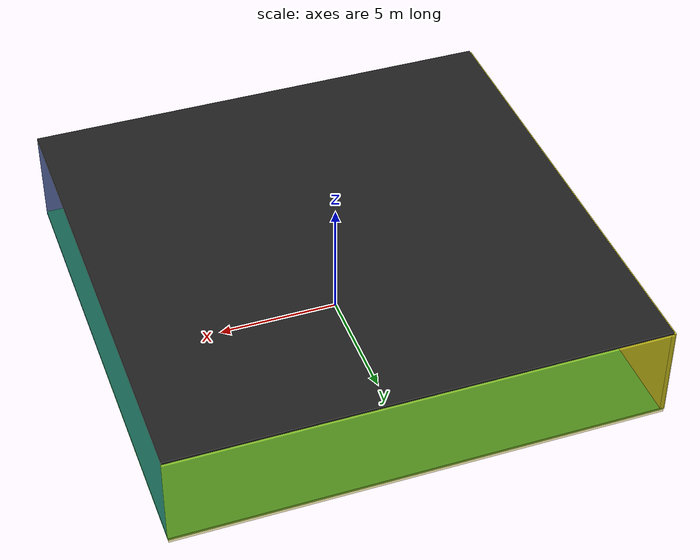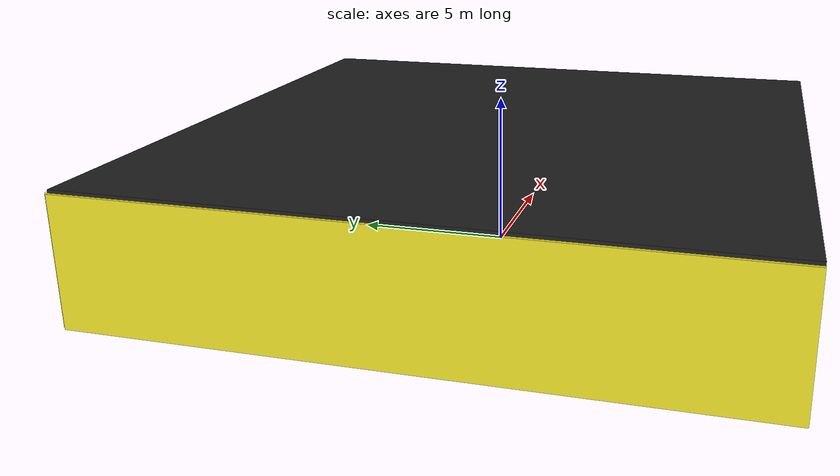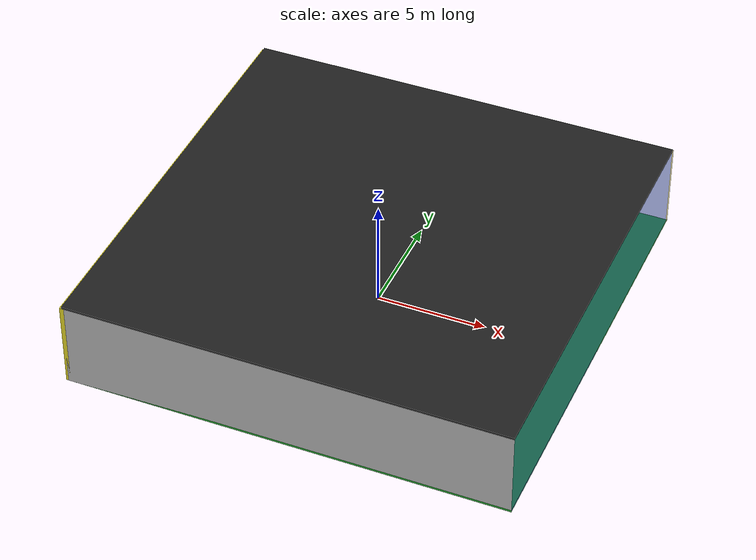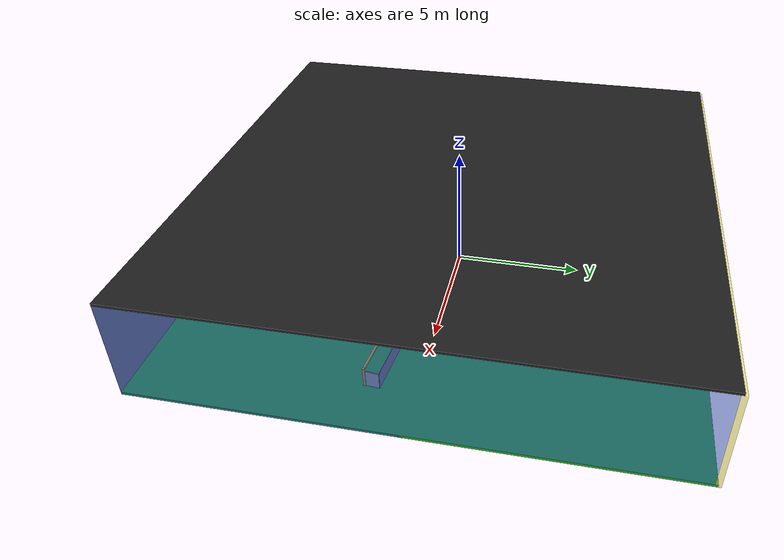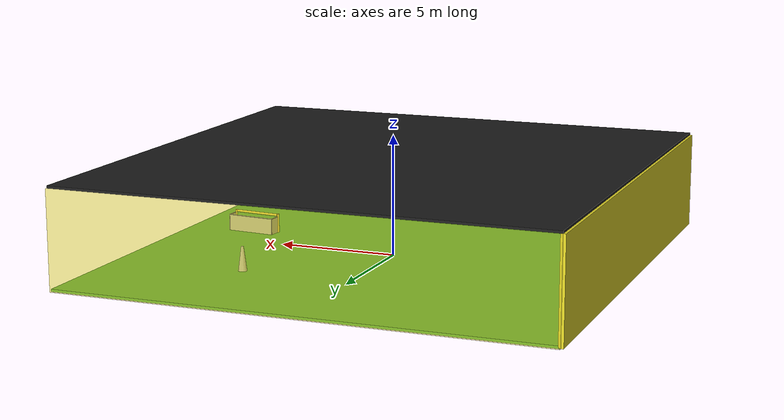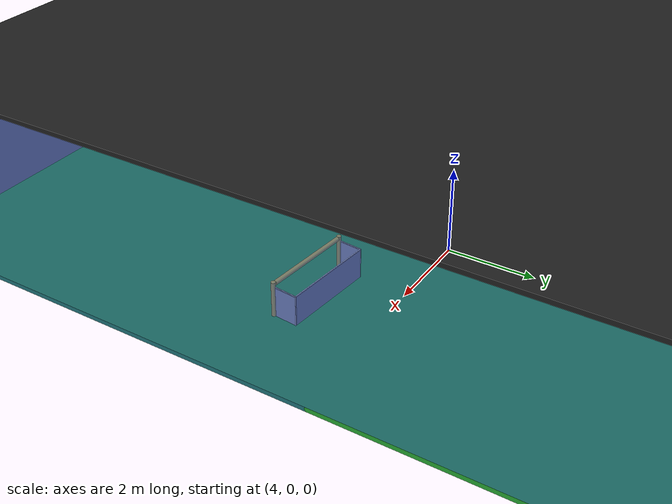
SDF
<sdf version="1.4">
 <world name="default">
  <physics type="ode">
   <max_step_size>0.001</max_step_size>
   <real_time_factor>1</real_time_factor>
   <real_time_update_rate>1000</real_time_update_rate>
   <gravity>0 0 -9.8</gravity>
  </physics>
  <scene><ambient>0.4 0.4 0.4 1</ambient><background>0.7 0.7 0.7 1</background><shadows>1</shadows></scene>
  <model name="Surrounding">
   <static>1</static>
   <link name="Ceiling">
    <collision name="Ceiling_Collision"><geometry><box><size>20 20 0.1</size></box></geometry></collision>
    <visual name="Ceiling_Visual">
     <geometry><box><size>20 20 0.1</size></box></geometry>
     <material>
      <script><uri>file://media/materials/scripts/gazebo.material</uri><name>Gazebo/Black</name></script>
     </material>
    </visual>
    <pose>0 0 4.05 0 0 0</pose>
   </link>
   <link name="Wall_South">
    <collision name="Wall_South_Collision">
     <geometry><box><size>20 0 4</size></box></geometry>
     <pose>0 0 2 0 -0 0</pose>
    </collision>
    <visual name="Wall_South_Visual">
     <pose>0 0 2 0 -0 0</pose>
     <geometry><box><size>20 0 4</size></box></geometry>
     <material>
      <script><uri>file://media/materials/scripts/gazebo.material</uri><name>Gazebo/JointAnchor</name></script>
     </material>
    </visual>
    <velocity_decay><linear>0</linear><angular>0</angular></velocity_decay>
    <pose>0 -10 0 0 -0 0</pose>
   </link>
   <link name="Wall_East">
    <collision name="Wall_21_Collision">
     <geometry><box><size>20 0 4</size></box></geometry>
     <pose>0 0 2 0 -0 0</pose>
    </collision>
    <visual name="Wall_21_Visual">
     <pose>0 0 2 0 -0 0</pose>
     <geometry><box><size>20 0 4</size></box></geometry>
     <material>
      <script><uri>file://media/materials/scripts/gazebo.material</uri><name>Gazebo/BlueTransparent</name></script>
     </material>
    </visual>
    <velocity_decay><linear>0</linear><angular>0</angular></velocity_decay>
    <pose>10 0 0 0 -0 1.5708</pose>
   </link>
   <link name="Wall_North">
    <collision name="Wall_22_Collision">
     <geometry><box><size>20 0.2 4</size></box></geometry>
     <pose>0 0 2 0 -0 0</pose>
    </collision>
    <visual name="Wall_22_Visual">
     <pose>0 0 2 0 -0 0</pose>
     <geometry><box><size>20 0.2 4</size></box></geometry>
     <material>
      <script>
       <uri>file://media/materials/scripts/gazebo.material</uri>
       <name>Gazebo/YellowTransparent</name>
      </script>
     </material>
    </visual>
    <velocity_decay><linear>0</linear><angular>0</angular></velocity_decay>
    <pose>0 10 0 0 -0 0</pose>
   </link>
   <link name="Wall_West">
    <collision name="Wall_23_Collision">
     <geometry><box><size>20 0.2 4</size></box></geometry>
     <pose>0 0 2 0 -0 0</pose>
    </collision>
    <visual name="Wall_23_Visual">
     <pose>0 0 2 0 -0 0</pose>
     <geometry><box><size>20 0.2 4</size></box></geometry>
     <material>
      <script><uri>file://media/materials/scripts/gazebo.material</uri><name>Gazebo/YellowGlow</name></script>
     </material>
    </visual>
    <velocity_decay><linear>0</linear><angular>0</angular></velocity_decay>
    <pose>-10 0 0 0 0 -1.5708</pose>
   </link>
   <link name="Ground_link">
    <collision name="collision">
     <pose>0 0 .05 0 -0 0</pose>
     <geometry><box><size>20 20 0.1</size></box></geometry>
    </collision>
    <visual name="visual">
     <pose>0 0 .05 0 -0 0</pose>
     <geometry><box><size>20 20 0.1</size></box></geometry>
     <material>
      <script><uri>file://media/materials/scripts/gazebo.material</uri><name>Gazebo/GreenGlow</name></script>
     </material>
    </visual>
   </link>
   <static>1</static>
  </model>
  <spherical_coordinates>
   <surface_model>EARTH_WGS84</surface_model>
   <latitude_deg>0</latitude_deg>
   <longitude_deg>0</longitude_deg>
   <elevation>0</elevation>
   <heading_deg>0</heading_deg>
  </spherical_coordinates>
  <light name="lightball_0" type="diffuse">
   <diffuse>0.8 0.8 0.8 1</diffuse>
   <specular>0.2 0.2 0.2 1</specular>
   <attenuation>
    <range>100</range>
    <constant>0.7</constant>
    <linear>0.01</linear>
    <quadratic>0.001</quadratic>
   </attenuation>
   <direction>-0.5 0.1 -0.9</direction>
   <pose>-8.50731132923 -9.66249899215 3.18854163534 0 0 0</pose>
  </light>
  <light name="lightball_1" type="diffuse">
   <diffuse>0.8 0.8 0.8 1</diffuse>
   <specular>0.2 0.2 0.2 1</specular>
   <attenuation>
    <range>100</range>
    <constant>0.7</constant>
    <linear>0.01</linear>
    <quadratic>0.001</quadratic>
   </attenuation>
   <direction>-0.5 0.1 -0.9</direction>
   <pose>1.45346762812 -3.85129579979 3.71665255653 0 0 0</pose>
  </light>
  <light name="lightball_2" type="diffuse">
   <diffuse>0.8 0.8 0.8 1</diffuse>
   <specular>0.2 0.2 0.2 1</specular>
   <attenuation>
    <range>100</range>
    <constant>0.7</constant>
    <linear>0.01</linear>
    <quadratic>0.001</quadratic>
   </attenuation>
   <direction>-0.5 0.1 -0.9</direction>
   <pose>5.78233758633 -5.68437080012 1.81413884412 0 0 0</pose>
  </light>
  <light name="lightball_3" type="diffuse">
   <diffuse>0.8 0.8 0.8 1</diffuse>
   <specular>0.2 0.2 0.2 1</specular>
   <attenuation>
    <range>100</range>
    <constant>0.7</constant>
    <linear>0.01</linear>
    <quadratic>0.001</quadratic>
   </attenuation>
   <direction>-0.5 0.1 -0.9</direction>
   <pose>-7.5331627767 -1.51576610328 3.69166706735 0 0 0</pose>
  </light>
  <include><uri>model://cabinet</uri><pose>2.23695181359 -6.92865023496 0 0 0 1.35611240042</pose></include>
  <include>
   <uri>model://construction_cone</uri>
   <pose>4.46916975911 4.87391308282 0 0 0 1.17570626983</pose>
  </include>
  <include>
   <uri>model://robocup_3Dsim_goal</uri>
   <pose>7.0194492058 -1.70837851394 0 0 0 1.47202548318</pose>
  </include>
 </world>
</sdf>

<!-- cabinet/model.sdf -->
<sdf version="1.5">
  <model name="cabinet">
    <static>true</static>
    <link name="cabinet_bottom_plate">
      <inertial>
        <pose>0 0 -1 0 0 0</pose>
        <inertia>
          <ixx>2.050000</ixx>
          <ixy>0</ixy>
          <ixz>0</ixz>
          <iyy>2.050000</iyy>
          <iyz>0</iyz>
          <izz>2.050000</izz>
        </inertia>
        <mass>25.000000</mass>
      </inertial>
      <collision name="cabinet_bottom_plate_geom">
        <pose>0 0 0.010000 0 0 0</pose>
        <geometry>
          <box>
            <size>0.450000 0.450000 0.020000</size>
          </box>
        </geometry>
      </collision>
      <visual name="cabinet_bottom_plate_geom_visual">
        <pose>0 0 0.010000 0 0 0</pose>
        <geometry>
          <box>
            <size>0.450000 0.450000 0.020000</size>
          </box>
        </geometry>
        <material>
          <script>
            <uri>model://media/materials/scripts/gazebo.material</uri>
            <name>Gazebo/Wood</name>
          </script>
        </material>
      </visual>
      <collision name="cabinet_bottom_plate_geom_cabinet_back_plate">
        <pose>0.235000 0 0.510000 0 0 0</pose>
        <geometry>
          <box>
            <size>0.020000 0.450000 1.020000</size>
          </box>
        </geometry>
      </collision>
      <visual name="cabinet_bottom_plate_geom_cabinet_back_plate_visual">
        <pose>0.235000 0 0.510000 0 0 0</pose>
        <geometry>
          <box>
            <size>0.020000 0.450000 1.020000</size>
          </box>
        </geometry>
        <material>
          <script>
            <uri>model://media/materials/scripts/gazebo.material</uri>
            <name>Gazebo/Wood</name>
          </script>
        </material>
      </visual>
      <collision name="cabinet_bottom_plate_geom_cabinet_left_plate">
        <pose>0 0.235000 0.510000 0 0 0</pose>
        <geometry>
          <box>
            <size>0.450000 0.020000 1.020000</size>
          </box>
        </geometry>
      </collision>
      <visual name="cabinet_bottom_plate_geom_cabinet_left_plate_visual">
        <pose>0 0.235000 0.510000 0 0 0</pose>
        <geometry>
          <box>
            <size>0.450000 0.020000 1.020000</size>
          </box>
        </geometry>
        <material>
          <script>
            <uri>model://media/materials/scripts/gazebo.material</uri>
            <name>Gazebo/Wood</name>
          </script>
        </material>
      </visual>
      <collision name="cabinet_bottom_plate_geom_cabinet_middle_plate">
        <pose>0 0 0.510000 0 0 0</pose>
        <geometry>
          <box>
            <size>0.450000 0.450000 0.020000</size>
          </box>
        </geometry>
      </collision>
      <visual name="cabinet_bottom_plate_geom_cabinet_middle_plate_visual">
        <pose>0 0 0.510000 0 0 0</pose>
        <geometry>
          <box>
            <size>0.450000 0.450000 0.020000</size>
          </box>
        </geometry>
        <material>
          <script>
            <uri>model://media/materials/scripts/gazebo.material</uri>
            <name>Gazebo/Wood</name>
          </script>
        </material>
      </visual>
      <collision name="cabinet_bottom_plate_geom_cabinet_right_plate">
        <pose>0 -0.235000 0.510000 0 0 0</pose>
        <geometry>
          <box>
            <size>0.450000 0.020000 1.020000</size>
          </box>
        </geometry>
      </collision>
      <visual name="cabinet_bottom_plate_geom_cabinet_right_plate_visual">
        <pose>0 -0.235000 0.510000 0 0 0</pose>
        <geometry>
          <box>
            <size>0.450000 0.020000 1.020000</size>
          </box>
        </geometry>
        <material>
          <script>
            <uri>model://media/materials/scripts/gazebo.material</uri>
            <name>Gazebo/Wood</name>
          </script>
        </material>
      </visual>
      <collision name="cabinet_bottom_plate_geom_cabinet_top_plate">
        <pose>0 0 1.010000 0 0 0</pose>
        <geometry>
          <box>
            <size>0.450000 0.450000 0.020000</size>
          </box>
        </geometry>
      </collision>
      <visual name="cabinet_bottom_plate_geom_cabinet_top_plate_visual">
        <pose>0 0 1.010000 0 0 0</pose>
        <geometry>
          <box>
            <size>0.450000 0.450000 0.020000</size>
          </box>
        </geometry>
        <material>
          <script>
            <uri>model://media/materials/scripts/gazebo.material</uri>
            <name>Gazebo/Wood</name>
          </script>
        </material>
      </visual>
    </link>
  </model>
</sdf>

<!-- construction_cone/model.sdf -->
<sdf version="1.5">
  <model name="Construction Cone">
    <link name="link">
      <collision name="collision">
        <geometry>
          <mesh>
            <scale>10 10 10</scale>
            <uri>file://isr-testbed/construction_cone/meshes/construction_cone.dae</uri>
          </mesh>
        </geometry>
      </collision>
      <visual name="visual">
        <geometry>
          <mesh>
            <scale>10 10 10</scale>
            <uri>file://isr-testbed/construction_cone/meshes/construction_cone.dae</uri>
          </mesh>
        </geometry>
      </visual>
    </link>
  </model>
</sdf>

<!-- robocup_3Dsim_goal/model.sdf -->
<sdf version="1.5">
  <model name="robocup_3d_goal">
    <static>true</static>
    <link name="left_post">
      <pose>0 1.05 0.45 0 0 0</pose>
      <collision name="collision">
        <geometry>
          <cylinder>
            <radius>0.05</radius>
            <length>0.9</length>
          </cylinder>
        </geometry>
      </collision>
      <visual name="visual">
        <geometry>
          <cylinder>
            <radius>0.05</radius>
            <length>0.9</length>
          </cylinder>
        </geometry>
        <material>
          <script>
            <uri>file://media/materials/scripts/gazebo.material</uri>
            <name>Gazebo/ZincYellow</name>
          </script>
        </material>
      </visual>
    </link>
    <link name="left_support_horiz_lower">
      <pose>0.30 1.05 0.01 0 0 0</pose>
      <collision name="collision">
        <geometry>
          <box>
            <size>0.50 0.02 0.02</size>
          </box>
        </geometry>
      </collision>
      <visual name="visual">
        <geometry>
          <box>
            <size>0.50 0.02 0.02</size>
          </box>
        </geometry>
        <material>
          <script>
            <uri>file://media/materials/scripts/gazebo.material</uri>
            <name>Gazebo/White</name>
          </script>
        </material>
      </visual>
    </link>
    <link name="left_support_horiz_upper">
      <pose>0.30 1.05 0.79 0 0 0</pose>
      <collision name="collision">
        <geometry>
          <box>
            <size>0.50 0.02 0.02</size>
          </box>
        </geometry>
      </collision>
      <visual name="visual">
        <geometry>
          <box>
            <size>0.50 0.02 0.02</size>
          </box>
        </geometry>
        <material>
          <script>
            <uri>file://media/materials/scripts/gazebo.material</uri>
            <name>Gazebo/White</name>
          </script>
        </material>
      </visual>
    </link>
    <link name="left_support_vertical">
      <pose>0.56 1.05 0.4 0 1.5708 0</pose>
      <collision name="collision">
        <geometry>
          <box>
            <size>0.80 0.02 0.02</size>
          </box>
        </geometry>
      </collision>
      <visual name="visual">
        <geometry>
          <box>
            <size>0.80 0.02 0.02</size>
          </box>
        </geometry>
        <material>
          <script>
            <uri>file://media/materials/scripts/gazebo.material</uri>
            <name>Gazebo/White</name>
          </script>
        </material>
      </visual>
    </link>
    <link name="right_support_horiz_lower">
      <pose>0.30 -1.05 0.01 0 0 0</pose>
      <collision name="collision">
        <geometry>
          <box>
            <size>0.50 0.02 0.02</size>
          </box>
        </geometry>
      </collision>
      <visual name="visual">
        <geometry>
          <box>
            <size>0.50 0.02 0.02</size>
          </box>
        </geometry>
        <material>
          <script>
            <uri>file://media/materials/scripts/gazebo.material</uri>
            <name>Gazebo/White</name>
          </script>
        </material>
      </visual>
    </link>
    <link name="right_support_horiz_upper">
      <pose>0.30 -1.05 0.79 0 0 0</pose>
      <collision name="collision">
        <geometry>
          <box>
            <size>0.50 0.02 0.02</size>
          </box>
        </geometry>
      </collision>
      <visual name="visual">
        <geometry>
          <box>
            <size>0.50 0.02 0.02</size>
          </box>
        </geometry>
        <material>
          <script>
            <uri>file://media/materials/scripts/gazebo.material</uri>
            <name>Gazebo/White</name>
          </script>
        </material>
      </visual>
    </link>
    <link name="right_support_vertical">
      <pose>0.56 -1.05 0.4 0 1.5708 0</pose>
      <collision name="collision">
        <geometry>
          <box>
            <size>0.80 0.02 0.02</size>
          </box>
        </geometry>
      </collision>
      <visual name="visual">
        <geometry>
          <box>
            <size>0.80 0.02 0.02</size>
          </box>
        </geometry>
        <material>
          <script>
            <uri>file://media/materials/scripts/gazebo.material</uri>
            <name>Gazebo/White</name>
          </script>
        </material>
      </visual>
    </link>
    <link name="center_support_horiz_lower">
      <pose>0.56 0 0.01 0 1.5708 0</pose>
      <collision name="collision">
        <geometry>
          <box>
            <size>0.02 2.08 0.02</size>
          </box>
        </geometry>
      </collision>
      <visual name="visual">
        <geometry>
          <box>
            <size>0.02 2.08 0.02</size>
          </box>
        </geometry>
        <material>
          <script>
            <uri>file://media/materials/scripts/gazebo.material</uri>
            <name>Gazebo/White</name>
          </script>
        </material>
      </visual>
    </link>
    <link name="center_support_horiz_upper">
      <pose>0.56 0 0.79 0 1.5708 0</pose>
      <collision name="collision">
        <geometry>
          <box>
            <size>0.02 2.08 0.02</size>
          </box>
        </geometry>
      </collision>
      <visual name="visual">
        <geometry>
          <box>
            <size>0.02 2.08 0.02</size>
          </box>
        </geometry>
        <material>
          <script>
            <uri>file://media/materials/scripts/gazebo.material</uri>
            <name>Gazebo/White</name>
          </script>
        </material>
      </visual>
    </link>
    <link name="right_post">
      <pose>0 -1.05 0.45 0 0 0</pose>
      <collision name="collision">
        <geometry>
          <cylinder>
            <radius>0.05</radius>
            <length>0.9</length>
          </cylinder>
        </geometry>
      </collision>
      <visual name="visual">
        <geometry>
          <cylinder>
            <radius>0.05</radius>
            <length>0.9</length>
          </cylinder>
        </geometry>
        <material>
          <script>
            <uri>file://media/materials/scripts/gazebo.material</uri>
            <name>Gazebo/ZincYellow</name>
          </script>
        </material>
      </visual>
    </link>
    <link name="crossbar">
      <pose>0 0 0.85 1.57 1.57 0</pose>
      <collision name="collision">
        <geometry>
          <cylinder>
            <radius>0.05</radius>
            <length>2.0</length>
          </cylinder>
        </geometry>
      </collision>
      <visual name="visual">
        <geometry>
          <cylinder>
            <radius>0.05</radius>
            <length>2.0</length>
          </cylinder>
        </geometry>
        <material>
          <script>
            <uri>file://media/materials/scripts/gazebo.material</uri>
            <name>Gazebo/ZincYellow</name>
          </script>
        </material>
      </visual>
    </link>
    <link name="center_net">
      <pose>0.56 0 0.40 0 0 0</pose>
      <collision name="collision">
        <geometry>
          <box>
            <size>0.01 2.1 0.80</size>
          </box>
        </geometry>
      </collision>
      <visual name="visual">
        <geometry>
          <box>
            <size>0.01 2.1 0.80</size>
          </box>
        </geometry>
        <material>
          <script>
            <uri>model://../model_source/models/robocup09_spl_field/materials/scripts/</uri>
            <uri>model://../model_source/models/robocup09_spl_field/materials/textures/</uri>
            <name>RoboCup/Net</name>
          </script>
        </material>
      </visual>
    </link>
    <link name="left_net">
      <pose>0.30 1.05 0.40 0 0 0</pose>
      <collision name="collision">
        <geometry>
          <box>
            <size>0.50 0.01 0.76</size>
          </box>
        </geometry>
      </collision>
      <visual name="visual">
        <geometry>
          <box>
            <size>0.50 0.01 0.76</size>
          </box>
        </geometry>
        <material>
          <script>
            <uri>model://../model_source/models/robocup09_spl_field/materials/scripts/</uri>
            <uri>model://../model_source/models/robocup09_spl_field/materials/textures/</uri>
            <name>RoboCup/Net</name>
          </script>
        </material>
      </visual>
    </link>
    <link name="right_net">
      <pose>0.30 -1.05 0.40 0 0 0</pose>
      <collision name="collision">
        <geometry>
          <box>
            <size>0.50 0.01 0.76</size>
          </box>
        </geometry>
      </collision>
      <visual name="visual">
        <geometry>
          <box>
            <size>0.50 0.01 0.76</size>
          </box>
        </geometry>
        <material>
          <script>
            <uri>model://../model_source/models/robocup09_spl_field/materials/scripts/</uri>
            <uri>model://../model_source/models/robocup09_spl_field/materials/textures/</uri>
            <name>RoboCup/Net</name>
          </script>
        </material>
      </visual>
    </link>
  </model>
</sdf>
